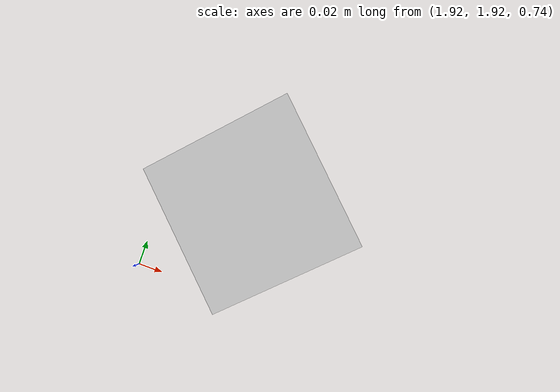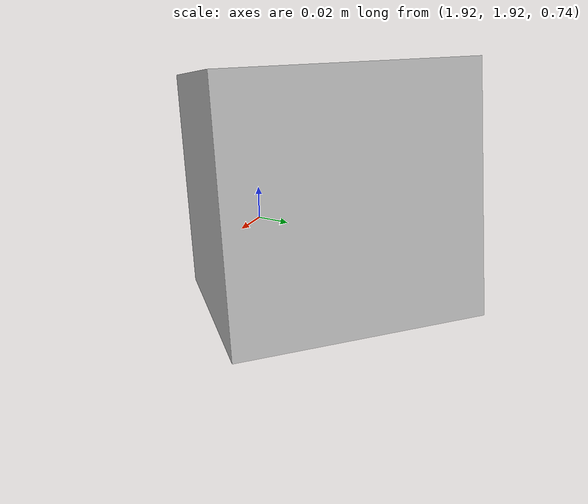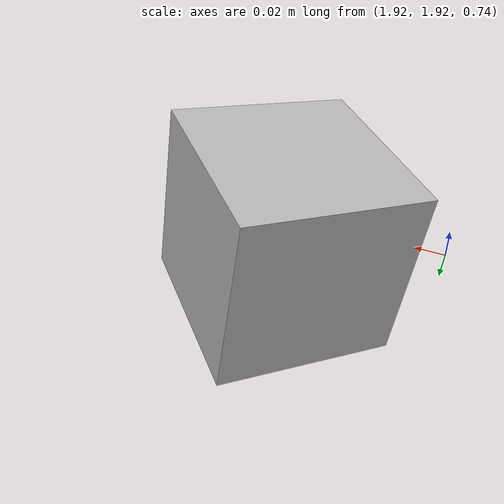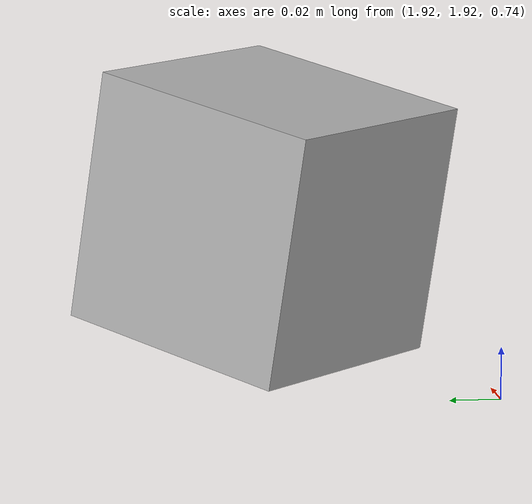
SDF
<?xml version="1.0" ?>
<sdf version="1.7">
  <model name='my_camera'>
      <static>true</static>

      <!--lateral view -->
      <pose>2.0 2.0 0.8 0 0.175 3.926</pose> <!--lateral view -->

      <link name='my_camera_link'>
        <visual name='visual'>
          <geometry>
            <box>
              <size>0.1 0.1 0.1</size>
            </box>
          </geometry>
        </visual>
        <sensor name='my_camera_sensor' type='camera'>
          <camera>
            <save enabled="true">
              <path> /home/andreap/WheeBBot/WheeBBot_v1/ROS2_foxy/wheebbot_ws/src/wheebbot/media/videos/video_frames </path>
            </save>
            <horizontal_fov>1</horizontal_fov>
            <image>
              <width>1920</width>
              <height>1080</height>
            </image>
            <clip>
              <near>0.1</near>
              <far>100</far>
            </clip>
          </camera>
          <always_on>1</always_on>
          <visualize>false</visualize>
          <update_rate>30</update_rate>
        </sensor>
      </link>
    </model>
</sdf>
